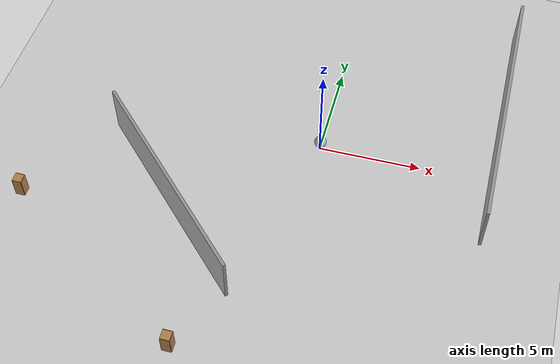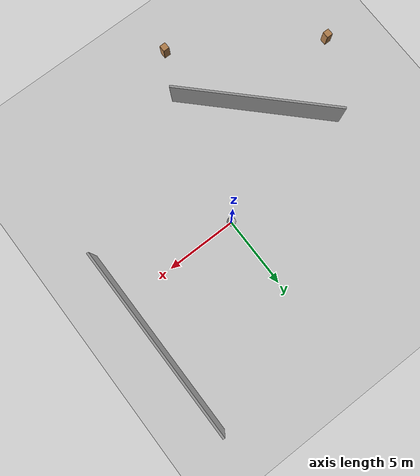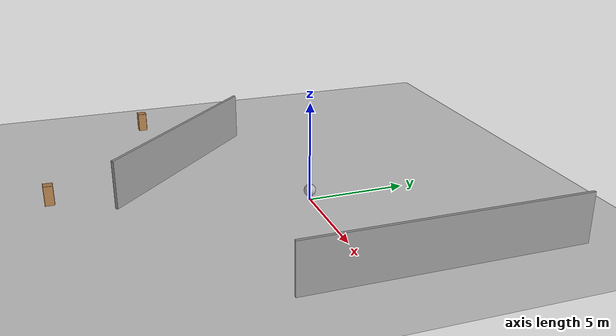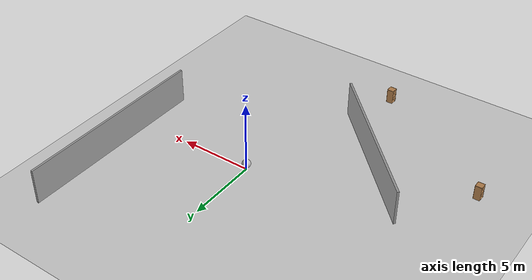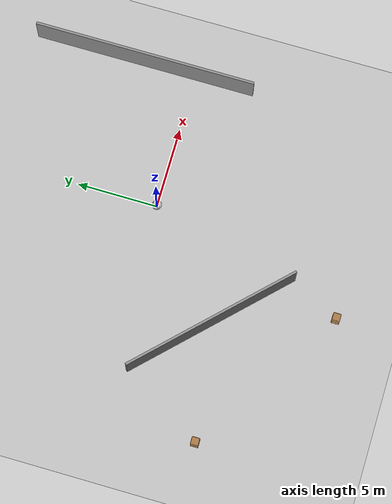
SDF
<sdf version="1.6">
 <world name="default">
  <model name="animated_ball">
   <pose>0 0 0.5 0 0 0</pose>
   <link name="link">
    <collision name="animated_ball_collision">
     <geometry><sphere><radius>0.3</radius></sphere></geometry>
    </collision>
    <visual name="visual"><geometry><sphere><radius>0.3</radius></sphere></geometry></visual>
    <inertial>
     <inertia><ixx>1</ixx><ixy>0</ixy><ixz>0</ixz><iyy>1</iyy><iyz>0</iyz><izz>1</izz></inertia>
     <mass>1</mass>
    </inertial>
    <gravity>0</gravity>
   </link>
   <plugin name="push_animate" filename="libbox_clockwise_movement.so"/>
  </model>
  <model name="ground_plane">
   <static>1</static>
   <link name="link">
    <collision name="collision">
     <geometry><plane><normal>0 0 1</normal><size>100 100</size></plane></geometry>
     <surface><friction><ode><mu>100</mu><mu2>50</mu2></ode></friction></surface>
    </collision>
    <visual name="visual">
     <cast_shadows>0</cast_shadows>
     <geometry><plane><normal>0 0 1</normal><size>100 100</size></plane></geometry>
     <material>
      <script><uri>file://media/materials/scripts/gazebo.material</uri><name>Gazebo/Grey</name></script>
     </material>
    </visual>
   </link>
  </model>
  <model name="room8">
   <pose>-0.858241 0.405678 0 0 -0 0</pose>
   <link name="Wall_5">
    <collision name="Wall_5_Collision">
     <geometry><box><size>11.5 0.15 2.5</size></box></geometry>
     <pose>0 0 1.25 0 -0 0</pose>
    </collision>
    <visual name="Wall_5_Visual">
     <pose>0 0 1.25 0 -0 0</pose>
     <geometry><box><size>11.5 0.15 2.5</size></box></geometry>
     <material>
      <script><uri>file://media/materials/scripts/gazebo.material</uri><name>Gazebo/Grey</name></script>
      <ambient>1 1 1 1</ambient>
     </material>
     <meta><layer>0</layer></meta>
    </visual>
    <pose>-5.24399 -5.56598 0 0 -0 -0.785398</pose>
   </link>
   <link name="Wall_7">
    <collision name="Wall_7_Collision">
     <geometry><box><size>13.75 0.15 2.5</size></box></geometry>
     <pose>0 0 1.25 0 -0 0</pose>
    </collision>
    <visual name="Wall_7_Visual">
     <pose>0 0 1.25 0 -0 0</pose>
     <geometry><box><size>13.75 0.15 2.5</size></box></geometry>
     <material>
      <script><uri>file://media/materials/scripts/gazebo.material</uri><name>Gazebo/Grey</name></script>
      <ambient>1 1 1 1</ambient>
     </material>
     <meta><layer>0</layer></meta>
    </visual>
    <pose>9.28789 2.80988 0 0 -0 -1.5708</pose>
   </link>
   <static>1</static>
  </model>
  <model name="cabinet_1">
   <static>1</static>
   <link name="cabinet_bottom_plate">
    <inertial>
     <pose>0 0 -1 0 -0 0</pose>
     <inertia><ixx>2.05</ixx><ixy>0</ixy><ixz>0</ixz><iyy>2.05</iyy><iyz>0</iyz><izz>2.05</izz></inertia>
     <mass>25</mass>
    </inertial>
    <collision name="cabinet_bottom_plate_geom">
     <pose>0 0 0.01 0 -0 0</pose>
     <geometry><box><size>0.45 0.45 0.02</size></box></geometry>
    </collision>
    <visual name="cabinet_bottom_plate_geom_visual">
     <pose>0 0 0.01 0 -0 0</pose>
     <geometry><box><size>0.45 0.45 0.02</size></box></geometry>
     <material>
      <script><uri>file://media/materials/scripts/gazebo.material</uri><name>Gazebo/Wood</name></script>
     </material>
    </visual>
    <collision name="cabinet_bottom_plate_geom_cabinet_back_plate">
     <pose>0.235 0 0.51 0 -0 0</pose>
     <geometry><box><size>0.02 0.45 1.02</size></box></geometry>
    </collision>
    <visual name="cabinet_bottom_plate_geom_cabinet_back_plate_visual">
     <pose>0.235 0 0.51 0 -0 0</pose>
     <geometry><box><size>0.02 0.45 1.02</size></box></geometry>
     <material>
      <script><uri>file://media/materials/scripts/gazebo.material</uri><name>Gazebo/Wood</name></script>
     </material>
    </visual>
    <collision name="cabinet_bottom_plate_geom_cabinet_left_plate">
     <pose>0 0.235 0.51 0 -0 0</pose>
     <geometry><box><size>0.45 0.02 1.02</size></box></geometry>
    </collision>
    <visual name="cabinet_bottom_plate_geom_cabinet_left_plate_visual">
     <pose>0 0.235 0.51 0 -0 0</pose>
     <geometry><box><size>0.45 0.02 1.02</size></box></geometry>
     <material>
      <script><uri>file://media/materials/scripts/gazebo.material</uri><name>Gazebo/Wood</name></script>
     </material>
    </visual>
    <collision name="cabinet_bottom_plate_geom_cabinet_middle_plate">
     <pose>0 0 0.51 0 -0 0</pose>
     <geometry><box><size>0.45 0.45 0.02</size></box></geometry>
    </collision>
    <visual name="cabinet_bottom_plate_geom_cabinet_middle_plate_visual">
     <pose>0 0 0.51 0 -0 0</pose>
     <geometry><box><size>0.45 0.45 0.02</size></box></geometry>
     <material>
      <script><uri>file://media/materials/scripts/gazebo.material</uri><name>Gazebo/Wood</name></script>
     </material>
    </visual>
    <collision name="cabinet_bottom_plate_geom_cabinet_right_plate">
     <pose>0 -0.235 0.51 0 -0 0</pose>
     <geometry><box><size>0.45 0.02 1.02</size></box></geometry>
    </collision>
    <visual name="cabinet_bottom_plate_geom_cabinet_right_plate_visual">
     <pose>0 -0.235 0.51 0 -0 0</pose>
     <geometry><box><size>0.45 0.02 1.02</size></box></geometry>
     <material>
      <script><uri>file://media/materials/scripts/gazebo.material</uri><name>Gazebo/Wood</name></script>
     </material>
    </visual>
    <collision name="cabinet_bottom_plate_geom_cabinet_top_plate">
     <pose>0 0 1.01 0 -0 0</pose>
     <geometry><box><size>0.45 0.45 0.02</size></box></geometry>
    </collision>
    <visual name="cabinet_bottom_plate_geom_cabinet_top_plate_visual">
     <pose>0 0 1.01 0 -0 0</pose>
     <geometry><box><size>0.45 0.45 0.02</size></box></geometry>
     <material>
      <script><uri>file://media/materials/scripts/gazebo.material</uri><name>Gazebo/Wood</name></script>
     </material>
    </visual>
   </link>
   <pose>-13.1946 -6.21905 0 0 -0 0</pose>
  </model>
  <model name="cabinet_2">
   <static>1</static>
   <link name="cabinet_bottom_plate">
    <inertial>
     <pose>0 0 -1 0 -0 0</pose>
     <inertia><ixx>2.05</ixx><ixy>0</ixy><ixz>0</ixz><iyy>2.05</iyy><iyz>0</iyz><izz>2.05</izz></inertia>
     <mass>25</mass>
    </inertial>
    <collision name="cabinet_bottom_plate_geom">
     <pose>0 0 0.01 0 -0 0</pose>
     <geometry><box><size>0.45 0.45 0.02</size></box></geometry>
    </collision>
    <visual name="cabinet_bottom_plate_geom_visual">
     <pose>0 0 0.01 0 -0 0</pose>
     <geometry><box><size>0.45 0.45 0.02</size></box></geometry>
     <material>
      <script><uri>file://media/materials/scripts/gazebo.material</uri><name>Gazebo/Wood</name></script>
     </material>
    </visual>
    <collision name="cabinet_bottom_plate_geom_cabinet_back_plate">
     <pose>0.235 0 0.51 0 -0 0</pose>
     <geometry><box><size>0.02 0.45 1.02</size></box></geometry>
    </collision>
    <visual name="cabinet_bottom_plate_geom_cabinet_back_plate_visual">
     <pose>0.235 0 0.51 0 -0 0</pose>
     <geometry><box><size>0.02 0.45 1.02</size></box></geometry>
     <material>
      <script><uri>file://media/materials/scripts/gazebo.material</uri><name>Gazebo/Wood</name></script>
     </material>
    </visual>
    <collision name="cabinet_bottom_plate_geom_cabinet_left_plate">
     <pose>0 0.235 0.51 0 -0 0</pose>
     <geometry><box><size>0.45 0.02 1.02</size></box></geometry>
    </collision>
    <visual name="cabinet_bottom_plate_geom_cabinet_left_plate_visual">
     <pose>0 0.235 0.51 0 -0 0</pose>
     <geometry><box><size>0.45 0.02 1.02</size></box></geometry>
     <material>
      <script><uri>file://media/materials/scripts/gazebo.material</uri><name>Gazebo/Wood</name></script>
     </material>
    </visual>
    <collision name="cabinet_bottom_plate_geom_cabinet_middle_plate">
     <pose>0 0 0.51 0 -0 0</pose>
     <geometry><box><size>0.45 0.45 0.02</size></box></geometry>
    </collision>
    <visual name="cabinet_bottom_plate_geom_cabinet_middle_plate_visual">
     <pose>0 0 0.51 0 -0 0</pose>
     <geometry><box><size>0.45 0.45 0.02</size></box></geometry>
     <material>
      <script><uri>file://media/materials/scripts/gazebo.material</uri><name>Gazebo/Wood</name></script>
     </material>
    </visual>
    <collision name="cabinet_bottom_plate_geom_cabinet_right_plate">
     <pose>0 -0.235 0.51 0 -0 0</pose>
     <geometry><box><size>0.45 0.02 1.02</size></box></geometry>
    </collision>
    <visual name="cabinet_bottom_plate_geom_cabinet_right_plate_visual">
     <pose>0 -0.235 0.51 0 -0 0</pose>
     <geometry><box><size>0.45 0.02 1.02</size></box></geometry>
     <material>
      <script><uri>file://media/materials/scripts/gazebo.material</uri><name>Gazebo/Wood</name></script>
     </material>
    </visual>
    <collision name="cabinet_bottom_plate_geom_cabinet_top_plate">
     <pose>0 0 1.01 0 -0 0</pose>
     <geometry><box><size>0.45 0.45 0.02</size></box></geometry>
    </collision>
    <visual name="cabinet_bottom_plate_geom_cabinet_top_plate_visual">
     <pose>0 0 1.01 0 -0 0</pose>
     <geometry><box><size>0.45 0.45 0.02</size></box></geometry>
     <material>
      <script><uri>file://media/materials/scripts/gazebo.material</uri><name>Gazebo/Wood</name></script>
     </material>
    </visual>
   </link>
   <pose>-3.72409 -12.2541 0 0 -0 0</pose>
  </model>
 </world>
</sdf>
